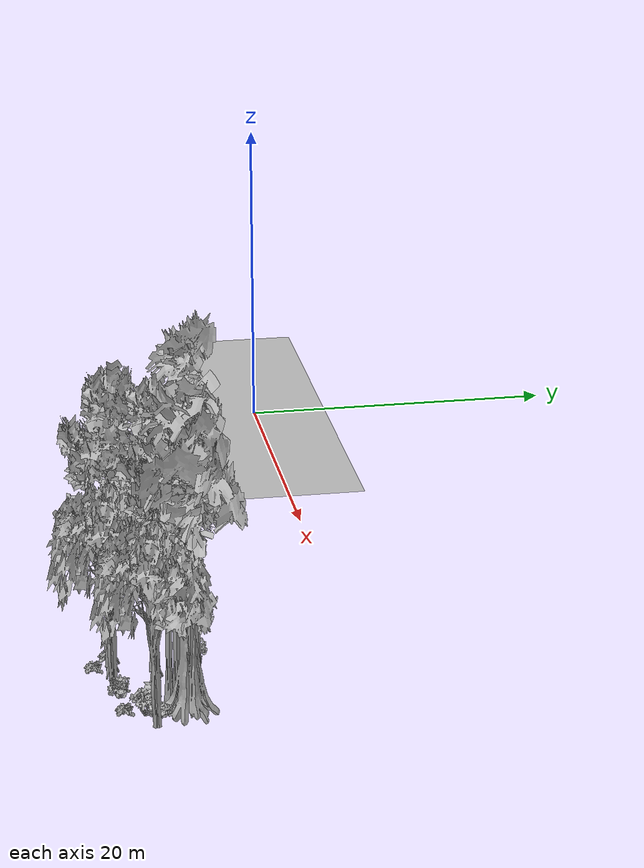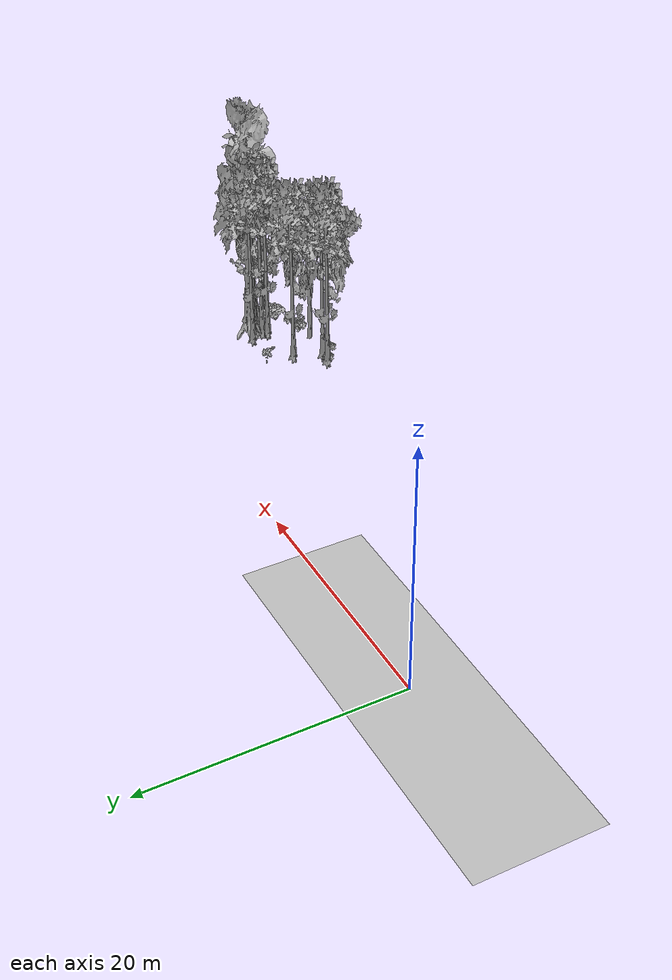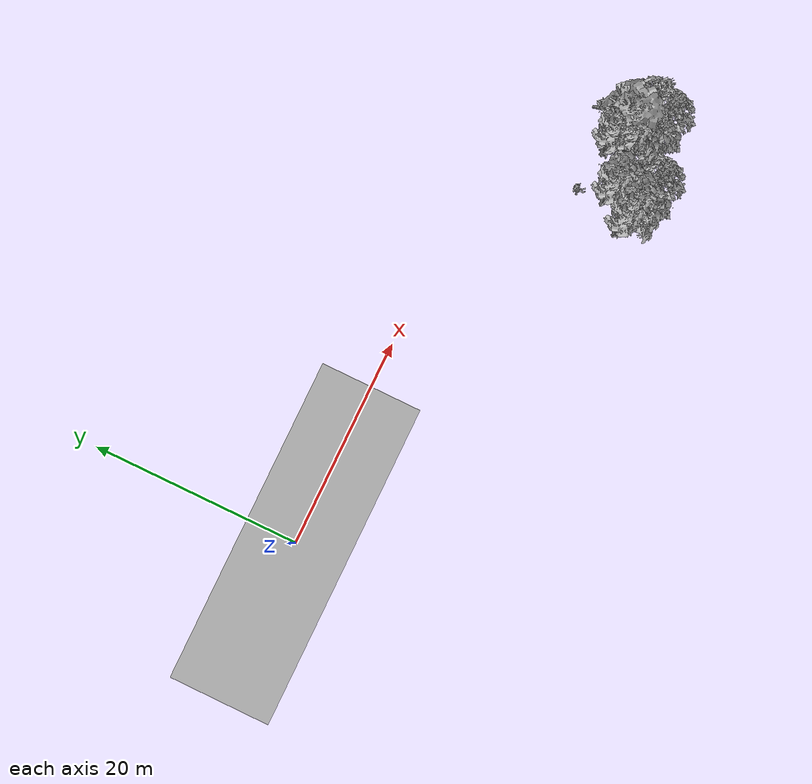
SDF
<sdf version="1.7">
 <world name="default">
  <model name="ground_plane">
   <static>1</static>
   <link name="link">
    <collision name="collision">
     <geometry><plane><normal>0 0 1</normal><size>100 100</size></plane></geometry>
     <surface><contact><ode><min_depth>0.01</min_depth><max_vel>0</max_vel></ode></contact></surface>
    </collision>
    <visual name="grass">
     <cast_shadows>0</cast_shadows>
     <geometry>
      <mesh>
       <scale>0.5814285714285714 0.18142857142857144 0.1</scale>
       <uri>file://grass_plane/meshes/grass_plane.dae</uri>
      </mesh>
     </geometry>
    </visual>
   </link>
  </model>
  <model name="Tree 29">
   <static>1</static>
   <pose>40.045501383420486 -11.56592414889058 0 1.57079 -0 0</pose>
   <link name="link">
    <collision name="collision">
     <geometry><mesh><scale>3.5 5 3.5</scale><uri>model://tree_9/meshes/tree_9.obj</uri></mesh></geometry>
    </collision>
    <visual name="visual">
     <geometry><mesh><scale>3.5 5 3.5</scale><uri>model://tree_9/meshes/tree_9.obj</uri></mesh></geometry>
    </visual>
   </link>
  </model>
  <model name="Tree 83">
   <static>1</static>
   <pose>45.60293624231974 -10.250406560544624 0 1.57079 -0 0</pose>
   <link name="link">
    <collision name="collision">
     <geometry><mesh><scale>3.5 5 3.5</scale><uri>model://tree_4/meshes/tree_4.obj</uri></mesh></geometry>
    </collision>
    <visual name="visual">
     <geometry><mesh><scale>3.5 5 3.5</scale><uri>model://tree_4/meshes/tree_4.obj</uri></mesh></geometry>
    </visual>
   </link>
  </model>
  <model name="Tree 122">
   <static>1</static>
   <pose>47.455332567109934 -12.312656446508521 0 1.57079 -0 0</pose>
   <link name="link">
    <collision name="collision">
     <geometry><mesh><scale>3.5 5 3.5</scale><uri>model://tree_2/meshes/tree_2.obj</uri></mesh></geometry>
    </collision>
    <visual name="visual">
     <geometry><mesh><scale>3.5 5 3.5</scale><uri>model://tree_2/meshes/tree_2.obj</uri></mesh></geometry>
    </visual>
   </link>
  </model>
  <model name="Tree 178">
   <static>1</static>
   <pose>44.166113432167634 -9.649078142912265 0 1.57079 -0 0</pose>
   <link name="link">
    <collision name="collision">
     <geometry><mesh><scale>3.5 5 3.5</scale><uri>model://tree_9/meshes/tree_9.obj</uri></mesh></geometry>
    </collision>
    <visual name="visual">
     <geometry><mesh><scale>3.5 5 3.5</scale><uri>model://tree_9/meshes/tree_9.obj</uri></mesh></geometry>
    </visual>
   </link>
  </model>
  <model name="Tree 203">
   <static>1</static>
   <pose>37.93981483914287 -13.80444350314747 0 1.57079 -0 0</pose>
   <link name="link">
    <collision name="collision">
     <geometry><mesh><scale>3.5 5 3.5</scale><uri>model://tree_9/meshes/tree_9.obj</uri></mesh></geometry>
    </collision>
    <visual name="visual">
     <geometry><mesh><scale>3.5 5 3.5</scale><uri>model://tree_9/meshes/tree_9.obj</uri></mesh></geometry>
    </visual>
   </link>
  </model>
  <model name="Tree 209">
   <static>1</static>
   <pose>39.0679934170971 -13.93419271571975 0 1.57079 -0 0</pose>
   <link name="link">
    <collision name="collision">
     <geometry><mesh><scale>3.5 5 3.5</scale><uri>model://tree_9/meshes/tree_9.obj</uri></mesh></geometry>
    </collision>
    <visual name="visual">
     <geometry><mesh><scale>3.5 5 3.5</scale><uri>model://tree_9/meshes/tree_9.obj</uri></mesh></geometry>
    </visual>
   </link>
  </model>
  <model name="Tree 233">
   <static>1</static>
   <pose>41.74091452864104 -14.083527293096157 0 1.57079 -0 0</pose>
   <link name="link">
    <collision name="collision">
     <geometry><mesh><scale>3.5 5 3.5</scale><uri>model://tree_2/meshes/tree_2.obj</uri></mesh></geometry>
    </collision>
    <visual name="visual">
     <geometry><mesh><scale>3.5 5 3.5</scale><uri>model://tree_2/meshes/tree_2.obj</uri></mesh></geometry>
    </visual>
   </link>
  </model>
  <model name="Tree 266">
   <static>1</static>
   <pose>45.04355043235495 -10.243659907047569 0 1.57079 -0 0</pose>
   <link name="link">
    <collision name="collision">
     <geometry><mesh><scale>3.5 5 3.5</scale><uri>model://tree_9/meshes/tree_9.obj</uri></mesh></geometry>
    </collision>
    <visual name="visual">
     <geometry><mesh><scale>3.5 5 3.5</scale><uri>model://tree_9/meshes/tree_9.obj</uri></mesh></geometry>
    </visual>
   </link>
  </model>
  <model name="Tree 402">
   <static>1</static>
   <pose>44.824788779272794 -10.873307955265613 0 1.57079 -0 0</pose>
   <link name="link">
    <collision name="collision">
     <geometry><mesh><scale>3.5 5 3.5</scale><uri>model://tree_9/meshes/tree_9.obj</uri></mesh></geometry>
    </collision>
    <visual name="visual">
     <geometry><mesh><scale>3.5 5 3.5</scale><uri>model://tree_9/meshes/tree_9.obj</uri></mesh></geometry>
    </visual>
   </link>
  </model>
  <model name="Tree 413">
   <static>1</static>
   <pose>44.469183146443854 -11.2503167413689 0 1.57079 -0 0</pose>
   <link name="link">
    <collision name="collision">
     <geometry><mesh><scale>3.5 5 3.5</scale><uri>model://tree_9/meshes/tree_9.obj</uri></mesh></geometry>
    </collision>
    <visual name="visual">
     <geometry><mesh><scale>3.5 5 3.5</scale><uri>model://tree_9/meshes/tree_9.obj</uri></mesh></geometry>
    </visual>
   </link>
  </model>
  <model name="Bush 11">
   <static>1</static>
   <pose>39.92727549755588 -8.925244558756303 0 1.57079 -0 0</pose>
   <link name="link">
    <collision name="collision">
     <geometry><mesh><scale>2 2 2</scale><uri>model://bush_5/meshes/bush_5.obj</uri></mesh></geometry>
     <surface><contact><collide_without_contact>false</collide_without_contact></contact></surface>
    </collision>
    <visual name="visual">
     <geometry><mesh><scale>2 2 2</scale><uri>model://bush_5/meshes/bush_5.obj</uri></mesh></geometry>
    </visual>
   </link>
  </model>
  <model name="Bush 53">
   <static>1</static>
   <pose>44.310062481926664 -9.977430512633866 0 1.57079 -0 0</pose>
   <link name="link">
    <collision name="collision">
     <geometry><mesh><scale>2 2 2</scale><uri>model://bush_2/meshes/bush_2.obj</uri></mesh></geometry>
     <surface><contact><collide_without_contact>false</collide_without_contact></contact></surface>
    </collision>
    <visual name="visual">
     <geometry><mesh><scale>2 2 2</scale><uri>model://bush_2/meshes/bush_2.obj</uri></mesh></geometry>
    </visual>
   </link>
  </model>
  <model name="Bush 71">
   <static>1</static>
   <pose>45.9974128758291 -12.74632869837642 0 1.57079 -0 0</pose>
   <link name="link">
    <collision name="collision">
     <geometry><mesh><scale>2 2 2</scale><uri>model://bush_4/meshes/bush_4.obj</uri></mesh></geometry>
     <surface><contact><collide_without_contact>false</collide_without_contact></contact></surface>
    </collision>
    <visual name="visual">
     <geometry><mesh><scale>2 2 2</scale><uri>model://bush_4/meshes/bush_4.obj</uri></mesh></geometry>
    </visual>
   </link>
  </model>
  <model name="Bush 72">
   <static>1</static>
   <pose>38.188821374506475 -14.071204464832997 0 1.57079 -0 0</pose>
   <link name="link">
    <collision name="collision">
     <geometry><mesh><scale>2 2 2</scale><uri>model://bush_2/meshes/bush_2.obj</uri></mesh></geometry>
     <surface><contact><collide_without_contact>false</collide_without_contact></contact></surface>
    </collision>
    <visual name="visual">
     <geometry><mesh><scale>2 2 2</scale><uri>model://bush_2/meshes/bush_2.obj</uri></mesh></geometry>
    </visual>
   </link>
  </model>
  <model name="Bush 111">
   <static>1</static>
   <pose>45.90874296722579 -12.791799246724388 0 1.57079 -0 0</pose>
   <link name="link">
    <collision name="collision">
     <geometry><mesh><scale>2 2 2</scale><uri>model://bush_1/meshes/bush_1.obj</uri></mesh></geometry>
     <surface><contact><collide_without_contact>false</collide_without_contact></contact></surface>
    </collision>
    <visual name="visual">
     <geometry><mesh><scale>2 2 2</scale><uri>model://bush_1/meshes/bush_1.obj</uri></mesh></geometry>
    </visual>
   </link>
  </model>
  <model name="Bush 140">
   <static>1</static>
   <pose>45.569148506317845 -11.242032379502174 0 1.57079 -0 0</pose>
   <link name="link">
    <collision name="collision">
     <geometry><mesh><scale>2 2 2</scale><uri>model://bush_2/meshes/bush_2.obj</uri></mesh></geometry>
     <surface><contact><collide_without_contact>false</collide_without_contact></contact></surface>
    </collision>
    <visual name="visual">
     <geometry><mesh><scale>2 2 2</scale><uri>model://bush_2/meshes/bush_2.obj</uri></mesh></geometry>
    </visual>
   </link>
  </model>
  <model name="Bush 160">
   <static>1</static>
   <pose>45.27854129852888 -13.832926493028129 0 1.57079 -0 0</pose>
   <link name="link">
    <collision name="collision">
     <geometry><mesh><scale>2 2 2</scale><uri>model://bush_2/meshes/bush_2.obj</uri></mesh></geometry>
     <surface><contact><collide_without_contact>false</collide_without_contact></contact></surface>
    </collision>
    <visual name="visual">
     <geometry><mesh><scale>2 2 2</scale><uri>model://bush_2/meshes/bush_2.obj</uri></mesh></geometry>
    </visual>
   </link>
  </model>
  <model name="Bush 182">
   <static>1</static>
   <pose>43.47041208806563 -13.866873121184064 0 1.57079 -0 0</pose>
   <link name="link">
    <collision name="collision">
     <geometry><mesh><scale>2 2 2</scale><uri>model://bush_3/meshes/bush_3.obj</uri></mesh></geometry>
     <surface><contact><collide_without_contact>false</collide_without_contact></contact></surface>
    </collision>
    <visual name="visual">
     <geometry><mesh><scale>2 2 2</scale><uri>model://bush_3/meshes/bush_3.obj</uri></mesh></geometry>
    </visual>
   </link>
  </model>
  <model name="Bush 193">
   <static>1</static>
   <pose>46.52650696776659 -11.93955156192908 0 1.57079 -0 0</pose>
   <link name="link">
    <collision name="collision">
     <geometry><mesh><scale>2 2 2</scale><uri>model://bush_3/meshes/bush_3.obj</uri></mesh></geometry>
     <surface><contact><collide_without_contact>false</collide_without_contact></contact></surface>
    </collision>
    <visual name="visual">
     <geometry><mesh><scale>2 2 2</scale><uri>model://bush_3/meshes/bush_3.obj</uri></mesh></geometry>
    </visual>
   </link>
  </model>
  <model name="Bush 278">
   <static>1</static>
   <pose>39.55054586927132 -14.98581269203923 0 1.57079 -0 0</pose>
   <link name="link">
    <collision name="collision">
     <geometry><mesh><scale>2 2 2</scale><uri>model://bush_2/meshes/bush_2.obj</uri></mesh></geometry>
     <surface><contact><collide_without_contact>false</collide_without_contact></contact></surface>
    </collision>
    <visual name="visual">
     <geometry><mesh><scale>2 2 2</scale><uri>model://bush_2/meshes/bush_2.obj</uri></mesh></geometry>
    </visual>
   </link>
  </model>
  <model name="Bush 286">
   <static>1</static>
   <pose>43.561046254158526 -13.961002152592322 0 1.57079 -0 0</pose>
   <link name="link">
    <collision name="collision">
     <geometry><mesh><scale>2 2 2</scale><uri>model://bush_4/meshes/bush_4.obj</uri></mesh></geometry>
     <surface><contact><collide_without_contact>false</collide_without_contact></contact></surface>
    </collision>
    <visual name="visual">
     <geometry><mesh><scale>2 2 2</scale><uri>model://bush_4/meshes/bush_4.obj</uri></mesh></geometry>
    </visual>
   </link>
  </model>
 </world>
</sdf>
